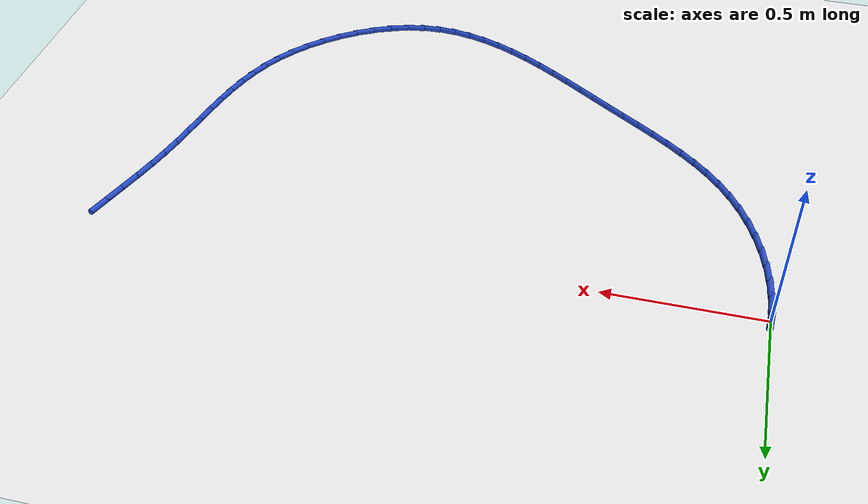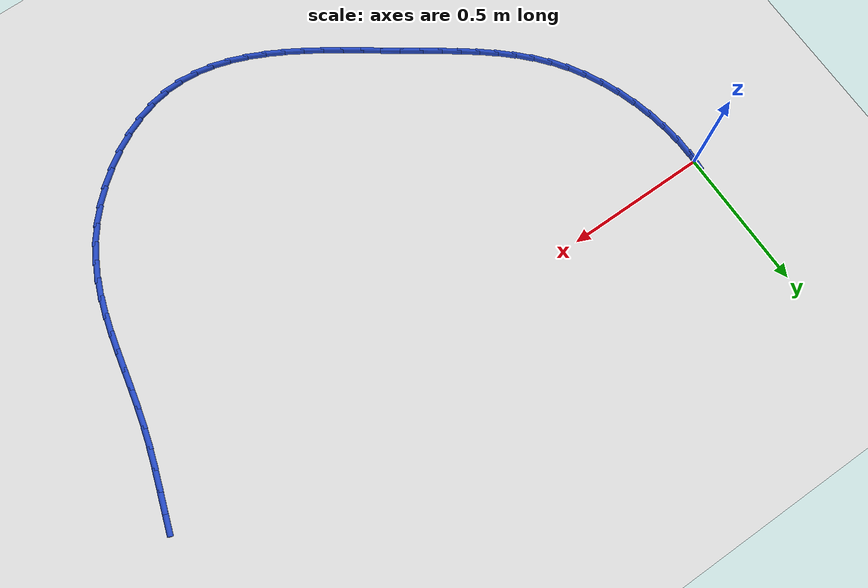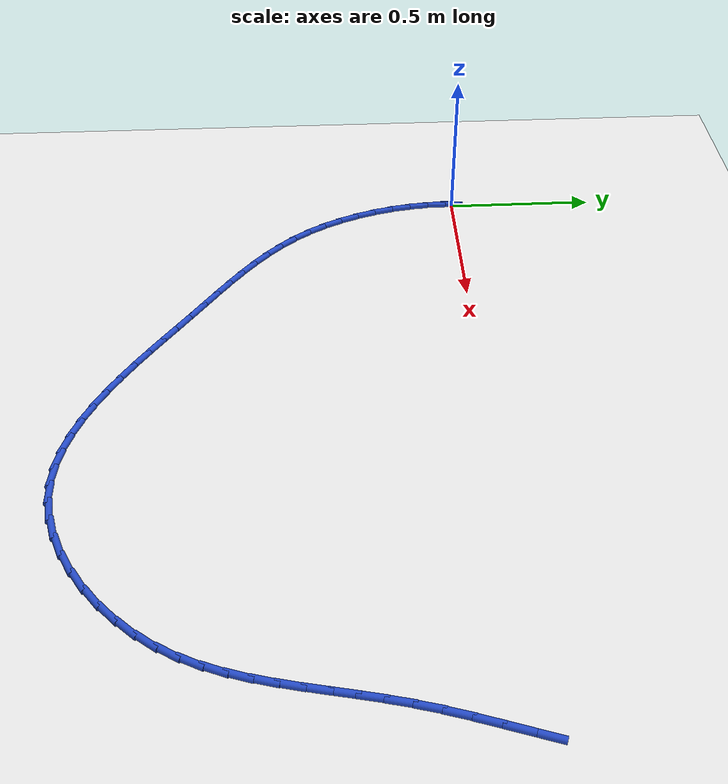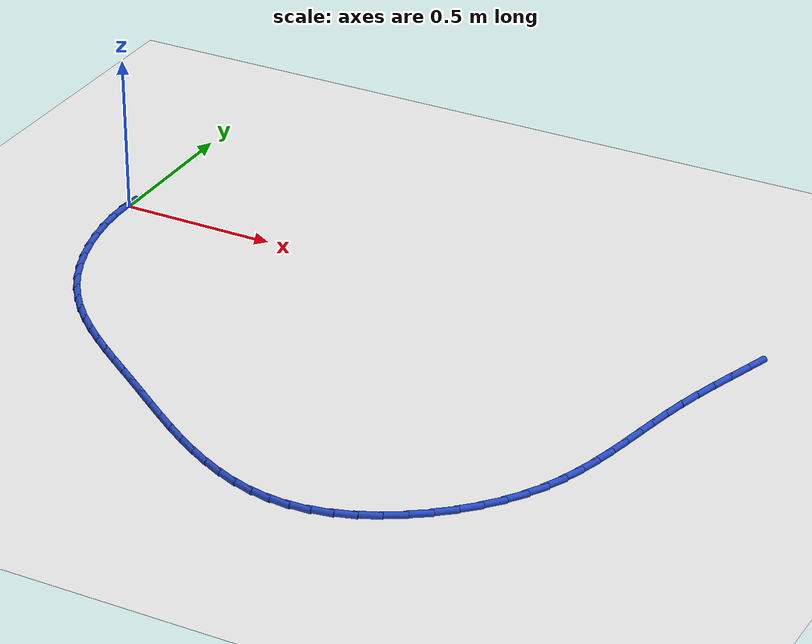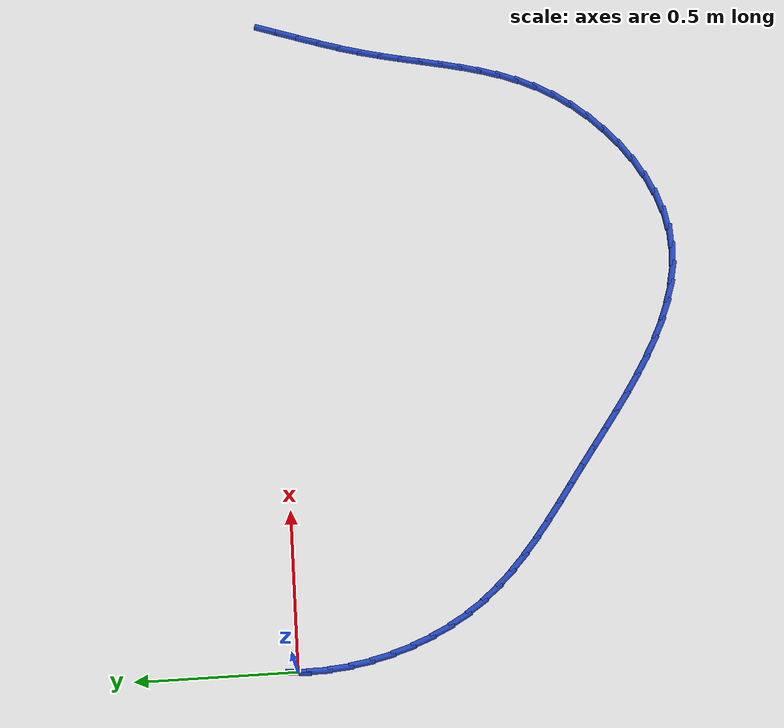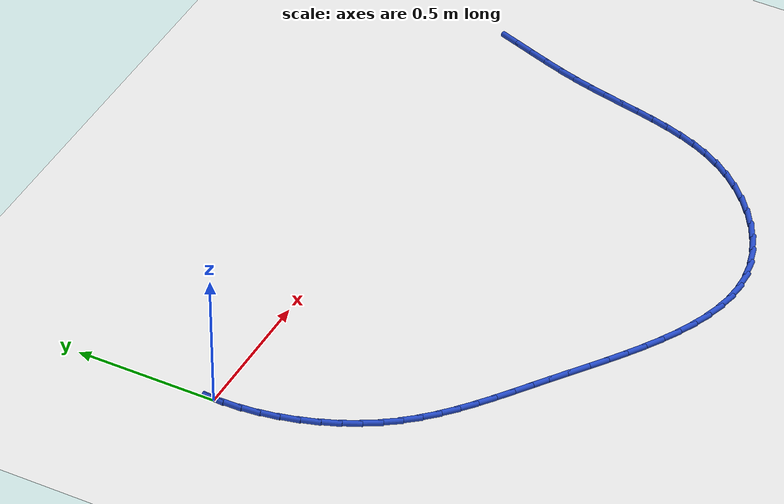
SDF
<sdf version="1.6">
 <world name="default">
  <model name="ground_plane">
   <static>1</static>
   <link name="link">
    <collision name="collision">
     <geometry><plane><normal>0 0 1</normal><size>100 100</size></plane></geometry>
     <surface><friction><ode><mu>100</mu><mu2>50</mu2></ode></friction></surface>
    </collision>
    <visual name="visual">
     <cast_shadows>0</cast_shadows>
     <geometry><plane><normal>0 0 1</normal><size>100 100</size></plane></geometry>
     <material>
      <script><uri>file://media/materials/scripts/gazebo.material</uri><name>Gazebo/WhiteGlow</name></script>
     </material>
    </visual>
   </link>
  </model>
  <model name="line">
   <link name="link_0">
    <pose>-5.551115123125783e-17 -1.3877787807814457e-17 0.01 0 1.57 1.4962968917443085</pose>
    <collision name="collision">
     <geometry><cylinder><radius>0.01</radius><length>0.08</length></cylinder></geometry>
    </collision>
    <visual name="visual">
     <material>
      <script><name>Gazebo/Blue</name><uri>file://media/materials/scripts/gazebo.material</uri></script>
     </material>
     <geometry><cylinder><radius>0.01</radius><length>0.08</length></cylinder></geometry>
    </visual>
   </link>
   <link name="link_56">
    <pose>2.1022171116349893 0.005181306408893957 0.01 0 1.57 1.2454758584279744</pose>
    <collision name="collision">
     <geometry><cylinder><radius>0.01</radius><length>0.08</length></cylinder></geometry>
    </collision>
    <visual name="visual">
     <material>
      <script><name>Gazebo/Blue</name><uri>file://media/materials/scripts/gazebo.material</uri></script>
     </material>
     <geometry><cylinder><radius>0.01</radius><length>0.08</length></cylinder></geometry>
    </visual>
   </link>
   <link name="link_57">
    <pose>2.0796647308417793 -0.06167926308427521 0.01 0 1.57 1.2449135686696065</pose>
    <collision name="collision">
     <geometry><cylinder><radius>0.01</radius><length>0.08</length></cylinder></geometry>
    </collision>
    <visual name="visual">
     <material>
      <script><name>Gazebo/Blue</name><uri>file://media/materials/scripts/gazebo.material</uri></script>
     </material>
     <geometry><cylinder><radius>0.01</radius><length>0.08</length></cylinder></geometry>
    </visual>
   </link>
   <link name="link_58">
    <pose>2.057020289347835 -0.12868832556637771 0.01 0 1.57 1.2556290254320415</pose>
    <collision name="collision">
     <geometry><cylinder><radius>0.01</radius><length>0.08</length></cylinder></geometry>
    </collision>
    <visual name="visual">
     <material>
      <script><name>Gazebo/Blue</name><uri>file://media/materials/scripts/gazebo.material</uri></script>
     </material>
     <geometry><cylinder><radius>0.01</radius><length>0.08</length></cylinder></geometry>
    </visual>
   </link>
   <link name="link_59">
    <pose>2.035186165945836 -0.19565707314749314 0.01 0 1.57 1.2779717881967179</pose>
    <collision name="collision">
     <geometry><cylinder><radius>0.01</radius><length>0.08</length></cylinder></geometry>
    </collision>
    <visual name="visual">
     <material>
      <script><name>Gazebo/Blue</name><uri>file://media/materials/scripts/gazebo.material</uri></script>
     </material>
     <geometry><cylinder><radius>0.01</radius><length>0.08</length></cylinder></geometry>
    </visual>
   </link>
   <link name="link_60">
    <pose>2.0150647394284626 -0.26239669793769776 0.01 0 1.57 1.3114966206407526</pose>
    <collision name="collision">
     <geometry><cylinder><radius>0.01</radius><length>0.08</length></cylinder></geometry>
    </collision>
    <visual name="visual">
     <material>
      <script><name>Gazebo/Blue</name><uri>file://media/materials/scripts/gazebo.material</uri></script>
     </material>
     <geometry><cylinder><radius>0.01</radius><length>0.08</length></cylinder></geometry>
    </visual>
   </link>
   <link name="link_61">
    <pose>1.9974706557176958 -0.3287214326450992 0.01 0 1.57 1.3425521909165155</pose>
    <collision name="collision">
     <geometry><cylinder><radius>0.01</radius><length>0.08</length></cylinder></geometry>
    </collision>
    <visual name="visual">
     <material>
      <script><name>Gazebo/Blue</name><uri>file://media/materials/scripts/gazebo.material</uri></script>
     </material>
     <geometry><cylinder><radius>0.01</radius><length>0.08</length></cylinder></geometry>
    </visual>
   </link>
   <link name="link_62">
    <pose>1.9821952402452627 -0.3944809756617567 0.01 0 1.57 1.3614032263347156</pose>
    <collision name="collision">
     <geometry><cylinder><radius>0.01</radius><length>0.08</length></cylinder></geometry>
    </collision>
    <visual name="visual">
     <material>
      <script><name>Gazebo/Blue</name><uri>file://media/materials/scripts/gazebo.material</uri></script>
     </material>
     <geometry><cylinder><radius>0.01</radius><length>0.08</length></cylinder></geometry>
    </visual>
   </link>
   <link name="link_63">
    <pose>1.968367981290874 -0.45954796297111966 0.01 0 1.57 1.3672539048323753</pose>
    <collision name="collision">
     <geometry><cylinder><radius>0.01</radius><length>0.08</length></cylinder></geometry>
    </collision>
    <visual name="visual">
     <material>
      <script><name>Gazebo/Blue</name><uri>file://media/materials/scripts/gazebo.material</uri></script>
     </material>
     <geometry><cylinder><radius>0.01</radius><length>0.08</length></cylinder></geometry>
    </visual>
   </link>
   <link name="link_64">
    <pose>1.9551072630340474 -0.5237954153964884 0.01 0 1.57 1.3595322250945936</pose>
    <collision name="collision">
     <geometry><cylinder><radius>0.01</radius><length>0.08</length></cylinder></geometry>
    </collision>
    <visual name="visual">
     <material>
      <script><name>Gazebo/Blue</name><uri>file://media/materials/scripts/gazebo.material</uri></script>
     </material>
     <geometry><cylinder><radius>0.01</radius><length>0.08</length></cylinder></geometry>
    </visual>
   </link>
   <link name="link_65">
    <pose>1.9415314696542985 -0.5870963537611653 0.01 0 1.57 1.3377159222702124</pose>
    <collision name="collision">
     <geometry><cylinder><radius>0.01</radius><length>0.08</length></cylinder></geometry>
    </collision>
    <visual name="visual">
     <material>
      <script><name>Gazebo/Blue</name><uri>file://media/materials/scripts/gazebo.material</uri></script>
     </material>
     <geometry><cylinder><radius>0.01</radius><length>0.08</length></cylinder></geometry>
    </visual>
   </link>
   <link name="link_66">
    <pose>1.9267589853311433 -0.6493237988884529 0.01 0 1.57 1.3013888032618832</pose>
    <collision name="collision">
     <geometry><cylinder><radius>0.01</radius><length>0.08</length></cylinder></geometry>
    </collision>
    <visual name="visual">
     <material>
      <script><name>Gazebo/Blue</name><uri>file://media/materials/scripts/gazebo.material</uri></script>
     </material>
     <geometry><cylinder><radius>0.01</radius><length>0.08</length></cylinder></geometry>
    </visual>
   </link>
   <link name="link_67">
    <pose>1.9099081942440979 -0.7103507716016514 0.01 0 1.57 1.2503900030499866</pose>
    <collision name="collision">
     <geometry><cylinder><radius>0.01</radius><length>0.08</length></cylinder></geometry>
    </collision>
    <visual name="visual">
     <material>
      <script><name>Gazebo/Blue</name><uri>file://media/materials/scripts/gazebo.material</uri></script>
     </material>
     <geometry><cylinder><radius>0.01</radius><length>0.08</length></cylinder></geometry>
    </visual>
   </link>
   <link name="link_68">
    <pose>1.8900974805726793 -0.7700502927240642 0.01 0 1.57 1.185058319564237</pose>
    <collision name="collision">
     <geometry><cylinder><radius>0.01</radius><length>0.08</length></cylinder></geometry>
    </collision>
    <visual name="visual">
     <material>
      <script><name>Gazebo/Blue</name><uri>file://media/materials/scripts/gazebo.material</uri></script>
     </material>
     <geometry><cylinder><radius>0.01</radius><length>0.08</length></cylinder></geometry>
    </visual>
   </link>
   <link name="link_69">
    <pose>1.8664452284964033 -0.8282953830789914 0.01 0 1.57 1.1065338237925426</pose>
    <collision name="collision">
     <geometry><cylinder><radius>0.01</radius><length>0.08</length></cylinder></geometry>
    </collision>
    <visual name="visual">
     <material>
      <script><name>Gazebo/Blue</name><uri>file://media/materials/scripts/gazebo.material</uri></script>
     </material>
     <geometry><cylinder><radius>0.01</radius><length>0.08</length></cylinder></geometry>
    </visual>
   </link>
   <link name="link_70">
    <pose>1.8380698221947867 -0.8849590634897365 0.01 0 1.57 1.0170830263047566</pose>
    <collision name="collision">
     <geometry><cylinder><radius>0.01</radius><length>0.08</length></cylinder></geometry>
    </collision>
    <visual name="visual">
     <material>
      <script><name>Gazebo/Blue</name><uri>file://media/materials/scripts/gazebo.material</uri></script>
     </material>
     <geometry><cylinder><radius>0.01</radius><length>0.08</length></cylinder></geometry>
    </visual>
   </link>
   <link name="link_71">
    <pose>1.8040967417445848 -0.939911588087614 0.01 0 1.57 0.9246966937997351</pose>
    <collision name="collision">
     <geometry><cylinder><radius>0.01</radius><length>0.08</length></cylinder></geometry>
    </collision>
    <visual name="visual">
     <material>
      <script><name>Gazebo/Blue</name><uri>file://media/materials/scripts/gazebo.material</uri></script>
     </material>
     <geometry><cylinder><radius>0.01</radius><length>0.08</length></cylinder></geometry>
    </visual>
   </link>
   <link name="link_72">
    <pose>1.7642116635642093 -0.9928047903199294 0.01 0 1.57 0.8373888630369613</pose>
    <collision name="collision">
     <geometry><cylinder><radius>0.01</radius><length>0.08</length></cylinder></geometry>
    </collision>
    <visual name="visual">
     <material>
      <script><name>Gazebo/Blue</name><uri>file://media/materials/scripts/gazebo.material</uri></script>
     </material>
     <geometry><cylinder><radius>0.01</radius><length>0.08</length></cylinder></geometry>
    </visual>
   </link>
   <link name="link_73">
    <pose>1.7190562164713594 -1.0429177775709797 0.01 0 1.57 0.7530479400521064</pose>
    <collision name="collision">
     <geometry><cylinder><radius>0.01</radius><length>0.08</length></cylinder></geometry>
    </collision>
    <visual name="visual">
     <material>
      <script><name>Gazebo/Blue</name><uri>file://media/materials/scripts/gazebo.material</uri></script>
     </material>
     <geometry><cylinder><radius>0.01</radius><length>0.08</length></cylinder></geometry>
    </visual>
   </link>
   <link name="link_74">
    <pose>1.6693654340257191 -1.0894932386944207 0.01 0 1.57 0.6688744331127576</pose>
    <collision name="collision">
     <geometry><cylinder><radius>0.01</radius><length>0.08</length></cylinder></geometry>
    </collision>
    <visual name="visual">
     <material>
      <script><name>Gazebo/Blue</name><uri>file://media/materials/scripts/gazebo.material</uri></script>
     </material>
     <geometry><cylinder><radius>0.01</radius><length>0.08</length></cylinder></geometry>
    </visual>
   </link>
   <link name="link_75">
    <pose>1.6158743497869748 -1.1317738625439056 0.01 0 1.57 0.582156186752111</pose>
    <collision name="collision">
     <geometry><cylinder><radius>0.01</radius><length>0.08</length></cylinder></geometry>
    </collision>
    <visual name="visual">
     <material>
      <script><name>Gazebo/Blue</name><uri>file://media/materials/scripts/gazebo.material</uri></script>
     </material>
     <geometry><cylinder><radius>0.01</radius><length>0.08</length></cylinder></geometry>
    </visual>
   </link>
   <link name="link_76">
    <pose>1.5593179973148132 -1.1690023379730916 0.01 0 1.57 0.4901270178860253</pose>
    <collision name="collision">
     <geometry><cylinder><radius>0.01</radius><length>0.08</length></cylinder></geometry>
    </collision>
    <visual name="visual">
     <material>
      <script><name>Gazebo/Blue</name><uri>file://media/materials/scripts/gazebo.material</uri></script>
     </material>
     <geometry><cylinder><radius>0.01</radius><length>0.08</length></cylinder></geometry>
    </visual>
   </link>
   <link name="link_77">
    <pose>1.5004314101689191 -1.2004213538356312 0.01 0 1.57 0.3898714070315288</pose>
    <collision name="collision">
     <geometry><cylinder><radius>0.01</radius><length>0.08</length></cylinder></geometry>
    </collision>
    <visual name="visual">
     <material>
      <script><name>Gazebo/Blue</name><uri>file://media/materials/scripts/gazebo.material</uri></script>
     </material>
     <geometry><cylinder><radius>0.01</radius><length>0.08</length></cylinder></geometry>
    </visual>
   </link>
   <link name="link_78">
    <pose>1.439949621908978 -1.2252735989851808 0.01 0 1.57 0.278328147329768</pose>
    <collision name="collision">
     <geometry><cylinder><radius>0.01</radius><length>0.08</length></cylinder></geometry>
    </collision>
    <visual name="visual">
     <material>
      <script><name>Gazebo/Blue</name><uri>file://media/materials/scripts/gazebo.material</uri></script>
     </material>
     <geometry><cylinder><radius>0.01</radius><length>0.08</length></cylinder></geometry>
    </visual>
   </link>
   <link name="link_79">
    <pose>1.3786076660946758 -1.2428017622753933 0.01 0 1.57 0.15256472752634676</pose>
    <collision name="collision">
     <geometry><cylinder><radius>0.01</radius><length>0.08</length></cylinder></geometry>
    </collision>
    <visual name="visual">
     <material>
      <script><name>Gazebo/Blue</name><uri>file://media/materials/scripts/gazebo.material</uri></script>
     </material>
     <geometry><cylinder><radius>0.01</radius><length>0.08</length></cylinder></geometry>
    </visual>
   </link>
   <link name="link_80">
    <pose>1.3171383198618782 -1.2522532613964712 0.01 0 1.57 0.018313345158913</pose>
    <collision name="collision">
     <geometry><cylinder><radius>0.01</radius><length>0.08</length></cylinder></geometry>
    </collision>
    <visual name="visual">
     <material>
      <script><name>Gazebo/Blue</name><uri>file://media/materials/scripts/gazebo.material</uri></script>
     </material>
     <geometry><cylinder><radius>0.01</radius><length>0.08</length></cylinder></geometry>
    </visual>
   </link>
   <link name="link_81">
    <pose>1.2560372884461397 -1.2533723507833652 0.01 0 1.57 -0.10740153788180444</pose>
    <collision name="collision">
     <geometry><cylinder><radius>0.01</radius><length>0.08</length></cylinder></geometry>
    </collision>
    <visual name="visual">
     <material>
      <script><name>Gazebo/Blue</name><uri>file://media/materials/scripts/gazebo.material</uri></script>
     </material>
     <geometry><cylinder><radius>0.01</radius><length>0.08</length></cylinder></geometry>
    </visual>
   </link>
   <link name="link_82">
    <pose>1.1953580213797188 -1.2468301297804774 0.01 0 1.57 -0.2193275294217107</pose>
    <collision name="collision">
     <geometry><cylinder><radius>0.01</radius><length>0.08</length></cylinder></geometry>
    </collision>
    <visual name="visual">
     <material>
      <script><name>Gazebo/Blue</name><uri>file://media/materials/scripts/gazebo.material</uri></script>
     </material>
     <geometry><cylinder><radius>0.01</radius><length>0.08</length></cylinder></geometry>
    </visual>
   </link>
   <link name="link_83">
    <pose>1.1351056035051035 -1.233399056665909 0.01 0 1.57 -0.3158308737920039</pose>
    <collision name="collision">
     <geometry><cylinder><radius>0.01</radius><length>0.08</length></cylinder></geometry>
    </collision>
    <visual name="visual">
     <material>
      <script><name>Gazebo/Blue</name><uri>file://media/materials/scripts/gazebo.material</uri></script>
     </material>
     <geometry><cylinder><radius>0.01</radius><length>0.08</length></cylinder></geometry>
    </visual>
   </link>
   <link name="link_84">
    <pose>1.0752851196647837 -1.2138515897177629 0.01 0 1.57 -0.39691701932234186</pose>
    <collision name="collision">
     <geometry><cylinder><radius>0.01</radius><length>0.08</length></cylinder></geometry>
    </collision>
    <visual name="visual">
     <material>
      <script><name>Gazebo/Blue</name><uri>file://media/materials/scripts/gazebo.material</uri></script>
     </material>
     <geometry><cylinder><radius>0.01</radius><length>0.08</length></cylinder></geometry>
    </visual>
   </link>
   <link name="link_85">
    <pose>1.0159016547012474 -1.1889601872141413 0.01 0 1.57 -0.4635417240475161</pose>
    <collision name="collision">
     <geometry><cylinder><radius>0.01</radius><length>0.08</length></cylinder></geometry>
    </collision>
    <visual name="visual">
     <material>
      <script><name>Gazebo/Blue</name><uri>file://media/materials/scripts/gazebo.material</uri></script>
     </material>
     <geometry><cylinder><radius>0.01</radius><length>0.08</length></cylinder></geometry>
    </visual>
   </link>
   <link name="link_86">
    <pose>0.9569602934569843 -1.1594973074331458 0.01 0 1.57 -0.5170384953799794</pose>
    <collision name="collision">
     <geometry><cylinder><radius>0.01</radius><length>0.08</length></cylinder></geometry>
    </collision>
    <visual name="visual">
     <material>
      <script><name>Gazebo/Blue</name><uri>file://media/materials/scripts/gazebo.material</uri></script>
     </material>
     <geometry><cylinder><radius>0.01</radius><length>0.08</length></cylinder></geometry>
    </visual>
   </link>
   <link name="link_87">
    <pose>0.8984661207744822 -1.126235408652879 0.01 0 1.57 -0.558751348544991</pose>
    <collision name="collision">
     <geometry><cylinder><radius>0.01</radius><length>0.08</length></cylinder></geometry>
    </collision>
    <visual name="visual">
     <material>
      <script><name>Gazebo/Blue</name><uri>file://media/materials/scripts/gazebo.material</uri></script>
     </material>
     <geometry><cylinder><radius>0.01</radius><length>0.08</length></cylinder></geometry>
    </visual>
   </link>
   <link name="link_88">
    <pose>0.8404242214962311 -1.0899469491514426 0.01 0 1.57 -0.5898382005514243</pose>
    <collision name="collision">
     <geometry><cylinder><radius>0.01</radius><length>0.08</length></cylinder></geometry>
    </collision>
    <visual name="visual">
     <material>
      <script><name>Gazebo/Blue</name><uri>file://media/materials/scripts/gazebo.material</uri></script>
     </material>
     <geometry><cylinder><radius>0.01</radius><length>0.08</length></cylinder></geometry>
    </visual>
   </link>
   <link name="link_89">
    <pose>0.782839680464719 -1.0514043872069392 0.01 0 1.57 -0.6111809559675355</pose>
    <collision name="collision">
     <geometry><cylinder><radius>0.01</radius><length>0.08</length></cylinder></geometry>
    </collision>
    <visual name="visual">
     <material>
      <script><name>Gazebo/Blue</name><uri>file://media/materials/scripts/gazebo.material</uri></script>
     </material>
     <geometry><cylinder><radius>0.01</radius><length>0.08</length></cylinder></geometry>
    </visual>
   </link>
   <link name="link_90">
    <pose>0.7257175825224355 -1.0113801810974712 0.01 0 1.57 -0.6233496795933223</pose>
    <collision name="collision">
     <geometry><cylinder><radius>0.01</radius><length>0.08</length></cylinder></geometry>
    </collision>
    <visual name="visual">
     <material>
      <script><name>Gazebo/Blue</name><uri>file://media/materials/scripts/gazebo.material</uri></script>
     </material>
     <geometry><cylinder><radius>0.01</radius><length>0.08</length></cylinder></geometry>
    </visual>
   </link>
   <link name="link_91">
    <pose>0.6690630125118682 -0.9706467891011397 0.01 0 1.57 -0.6265868082211414</pose>
    <collision name="collision">
     <geometry><cylinder><radius>0.01</radius><length>0.08</length></cylinder></geometry>
    </collision>
    <visual name="visual">
     <material>
      <script><name>Gazebo/Blue</name><uri>file://media/materials/scripts/gazebo.material</uri></script>
     </material>
     <geometry><cylinder><radius>0.01</radius><length>0.08</length></cylinder></geometry>
    </visual>
   </link>
   <link name="link_92">
    <pose>0.6128810552755077 -0.9299766694960485 0.01 0 1.57 -0.6211828388019548</pose>
    <collision name="collision">
     <geometry><cylinder><radius>0.01</radius><length>0.08</length></cylinder></geometry>
    </collision>
    <visual name="visual">
     <material>
      <script><name>Gazebo/Blue</name><uri>file://media/materials/scripts/gazebo.material</uri></script>
     </material>
     <geometry><cylinder><radius>0.01</radius><length>0.08</length></cylinder></geometry>
    </visual>
   </link>
   <link name="link_93">
    <pose>0.5571843963027496 -0.8901147818553079 0.01 0 1.57 -0.6161877808585278</pose>
    <collision name="collision">
     <geometry><cylinder><radius>0.01</radius><length>0.08</length></cylinder></geometry>
    </collision>
    <visual name="visual">
     <material>
      <script><name>Gazebo/Blue</name><uri>file://media/materials/scripts/gazebo.material</uri></script>
     </material>
     <geometry><cylinder><radius>0.01</radius><length>0.08</length></cylinder></geometry>
    </visual>
   </link>
   <link name="link_94">
    <pose>0.502166326158276 -0.8511526669384857 0.01 0 1.57 -0.6213722019870928</pose>
    <collision name="collision">
     <geometry><cylinder><radius>0.01</radius><length>0.08</length></cylinder></geometry>
    </collision>
    <visual name="visual">
     <material>
      <script><name>Gazebo/Blue</name><uri>file://media/materials/scripts/gazebo.material</uri></script>
     </material>
     <geometry><cylinder><radius>0.01</radius><length>0.08</length></cylinder></geometry>
    </visual>
   </link>
   <link name="link_95">
    <pose>0.44820401705561624 -0.8125165922361905 0.01 0 1.57 -0.6376607105862353</pose>
    <collision name="collision">
     <geometry><cylinder><radius>0.01</radius><length>0.08</length></cylinder></geometry>
    </collision>
    <visual name="visual">
     <material>
      <script><name>Gazebo/Blue</name><uri>file://media/materials/scripts/gazebo.material</uri></script>
     </material>
     <geometry><cylinder><radius>0.01</radius><length>0.08</length></cylinder></geometry>
    </visual>
   </link>
   <link name="link_96">
    <pose>0.39568289723633276 -0.7736029554026975 0.01 0 1.57 -0.6655227693125693</pose>
    <collision name="collision">
     <geometry><cylinder><radius>0.01</radius><length>0.08</length></cylinder></geometry>
    </collision>
    <visual name="visual">
     <material>
      <script><name>Gazebo/Blue</name><uri>file://media/materials/scripts/gazebo.material</uri></script>
     </material>
     <geometry><cylinder><radius>0.01</radius><length>0.08</length></cylinder></geometry>
    </visual>
   </link>
   <link name="link_97">
    <pose>0.34498839494198597 -0.7338081540922796 0.01 0 1.57 -0.7053254629980862</pose>
    <collision name="collision">
     <geometry><cylinder><radius>0.01</radius><length>0.08</length></cylinder></geometry>
    </collision>
    <visual name="visual">
     <material>
      <script><name>Gazebo/Blue</name><uri>file://media/materials/scripts/gazebo.material</uri></script>
     </material>
     <geometry><cylinder><radius>0.01</radius><length>0.08</length></cylinder></geometry>
    </visual>
   </link>
   <link name="link_98">
    <pose>0.2965059384141362 -0.6925285859592095 0.01 0 1.57 -0.7572043713800656</pose>
    <collision name="collision">
     <geometry><cylinder><radius>0.01</radius><length>0.08</length></cylinder></geometry>
    </collision>
    <visual name="visual">
     <material>
      <script><name>Gazebo/Blue</name><uri>file://media/materials/scripts/gazebo.material</uri></script>
     </material>
     <geometry><cylinder><radius>0.01</radius><length>0.08</length></cylinder></geometry>
    </visual>
   </link>
   <link name="link_99">
    <pose>0.25062095589434585 -0.6491606486577624 0.01 0 1.57 -0.8208796459833194</pose>
    <collision name="collision">
     <geometry><cylinder><radius>0.01</radius><length>0.08</length></cylinder></geometry>
    </collision>
    <visual name="visual">
     <material>
      <script><name>Gazebo/Blue</name><uri>file://media/materials/scripts/gazebo.material</uri></script>
     </material>
     <geometry><cylinder><radius>0.01</radius><length>0.08</length></cylinder></geometry>
    </visual>
   </link>
   <link name="link_100">
    <pose>0.20771887562417488 -0.6031007398422101 0.01 0 1.57 -0.8954458251821156</pose>
    <collision name="collision">
     <geometry><cylinder><radius>0.01</radius><length>0.08</length></cylinder></geometry>
    </collision>
    <visual name="visual">
     <material>
      <script><name>Gazebo/Blue</name><uri>file://media/materials/scripts/gazebo.material</uri></script>
     </material>
     <geometry><cylinder><radius>0.01</radius><length>0.08</length></cylinder></geometry>
    </visual>
   </link>
   <link name="link_101">
    <pose>0.16818512584518533 -0.5537452571668281 0.01 0 1.57 -0.9782324715488926</pose>
    <collision name="collision">
     <geometry><cylinder><radius>0.01</radius><length>0.08</length></cylinder></geometry>
    </collision>
    <visual name="visual">
     <material>
      <script><name>Gazebo/Blue</name><uri>file://media/materials/scripts/gazebo.material</uri></script>
     </material>
     <geometry><cylinder><radius>0.01</radius><length>0.08</length></cylinder></geometry>
    </visual>
   </link>
   <link name="link_102">
    <pose>0.1323880021555123 -0.5005766282272739 0.01 0 1.57 -1.0594017423509694</pose>
    <collision name="collision">
     <geometry><cylinder><radius>0.01</radius><length>0.08</length></cylinder></geometry>
    </collision>
    <visual name="visual">
     <material>
      <script><name>Gazebo/Blue</name><uri>file://media/materials/scripts/gazebo.material</uri></script>
     </material>
     <geometry><cylinder><radius>0.01</radius><length>0.08</length></cylinder></geometry>
    </visual>
   </link>
   <link name="link_103">
    <pose>0.10054495590024703 -0.4438347307059172 0.01 0 1.57 -1.1355663249543848</pose>
    <collision name="collision">
     <geometry><cylinder><radius>0.01</radius><length>0.08</length></cylinder></geometry>
    </collision>
    <visual name="visual">
     <material>
      <script><name>Gazebo/Blue</name><uri>file://media/materials/scripts/gazebo.material</uri></script>
     </material>
     <geometry><cylinder><radius>0.01</radius><length>0.08</length></cylinder></geometry>
    </visual>
   </link>
   <link name="link_104">
    <pose>0.07279503159071014 -0.38415315475237444 0.01 0 1.57 -1.2081513536919317</pose>
    <collision name="collision">
     <geometry><cylinder><radius>0.01</radius><length>0.08</length></cylinder></geometry>
    </collision>
    <visual name="visual">
     <material>
      <script><name>Gazebo/Blue</name><uri>file://media/materials/scripts/gazebo.material</uri></script>
     </material>
     <geometry><cylinder><radius>0.01</radius><length>0.08</length></cylinder></geometry>
    </visual>
   </link>
   <link name="link_105">
    <pose>0.04927660339487028 -0.32216885658173244 0.01 0 1.57 -1.2785680223232152</pose>
    <collision name="collision">
     <geometry><cylinder><radius>0.01</radius><length>0.08</length></cylinder></geometry>
    </collision>
    <visual name="visual">
     <material>
      <script><name>Gazebo/Blue</name><uri>file://media/materials/scripts/gazebo.material</uri></script>
     </material>
     <geometry><cylinder><radius>0.01</radius><length>0.08</length></cylinder></geometry>
    </visual>
   </link>
   <link name="link_106">
    <pose>0.03012804548069485 -0.2585187924090746 0.01 0 1.57 -1.3481936251867275</pose>
    <collision name="collision">
     <geometry><cylinder><radius>0.01</radius><length>0.08</length></cylinder></geometry>
    </collision>
    <visual name="visual">
     <material>
      <script><name>Gazebo/Blue</name><uri>file://media/materials/scripts/gazebo.material</uri></script>
     </material>
     <geometry><cylinder><radius>0.01</radius><length>0.08</length></cylinder></geometry>
    </visual>
   </link>
   <link name="link_107">
    <pose>0.015487732016152275 -0.1938399184494879 0.01 0 1.57 -1.4184050192806044</pose>
    <collision name="collision">
     <geometry><cylinder><radius>0.01</radius><length>0.08</length></cylinder></geometry>
    </collision>
    <visual name="visual">
     <material>
      <script><name>Gazebo/Blue</name><uri>file://media/materials/scripts/gazebo.material</uri></script>
     </material>
     <geometry><cylinder><radius>0.01</radius><length>0.08</length></cylinder></geometry>
    </visual>
   </link>
   <link name="link_108">
    <pose>0.005494037169210193 -0.12876919091805586 0.01 0 1.57 -1.4906191420706942</pose>
    <collision name="collision">
     <geometry><cylinder><radius>0.01</radius><length>0.08</length></cylinder></geometry>
    </collision>
    <visual name="visual">
     <material>
      <script><name>Gazebo/Blue</name><uri>file://media/materials/scripts/gazebo.material</uri></script>
     </material>
     <geometry><cylinder><radius>0.01</radius><length>0.08</length></cylinder></geometry>
    </visual>
   </link>
   <link name="link_109">
    <pose>0.0002853351078367962 -0.06394356602986531 0.01 0 1.57 -1.5663340605857523</pose>
    <collision name="collision">
     <geometry><cylinder><radius>0.01</radius><length>0.08</length></cylinder></geometry>
    </collision>
    <visual name="visual">
     <material>
      <script><name>Gazebo/Blue</name><uri>file://media/materials/scripts/gazebo.material</uri></script>
     </material>
     <geometry><cylinder><radius>0.01</radius><length>0.08</length></cylinder></geometry>
    </visual>
   </link>
   <link name="link_110">
    <pose>-5.204170427930421e-17 1.1102230246251565e-16 0.01 0 1.57 1.4944302600492152</pose>
    <collision name="collision">
     <geometry><cylinder><radius>0.01</radius><length>0.08</length></cylinder></geometry>
    </collision>
    <visual name="visual">
     <material>
      <script><name>Gazebo/Blue</name><uri>file://media/materials/scripts/gazebo.material</uri></script>
     </material>
     <geometry><cylinder><radius>0.01</radius><length>0.08</length></cylinder></geometry>
    </visual>
   </link>
  </model>
 </world>
</sdf>
